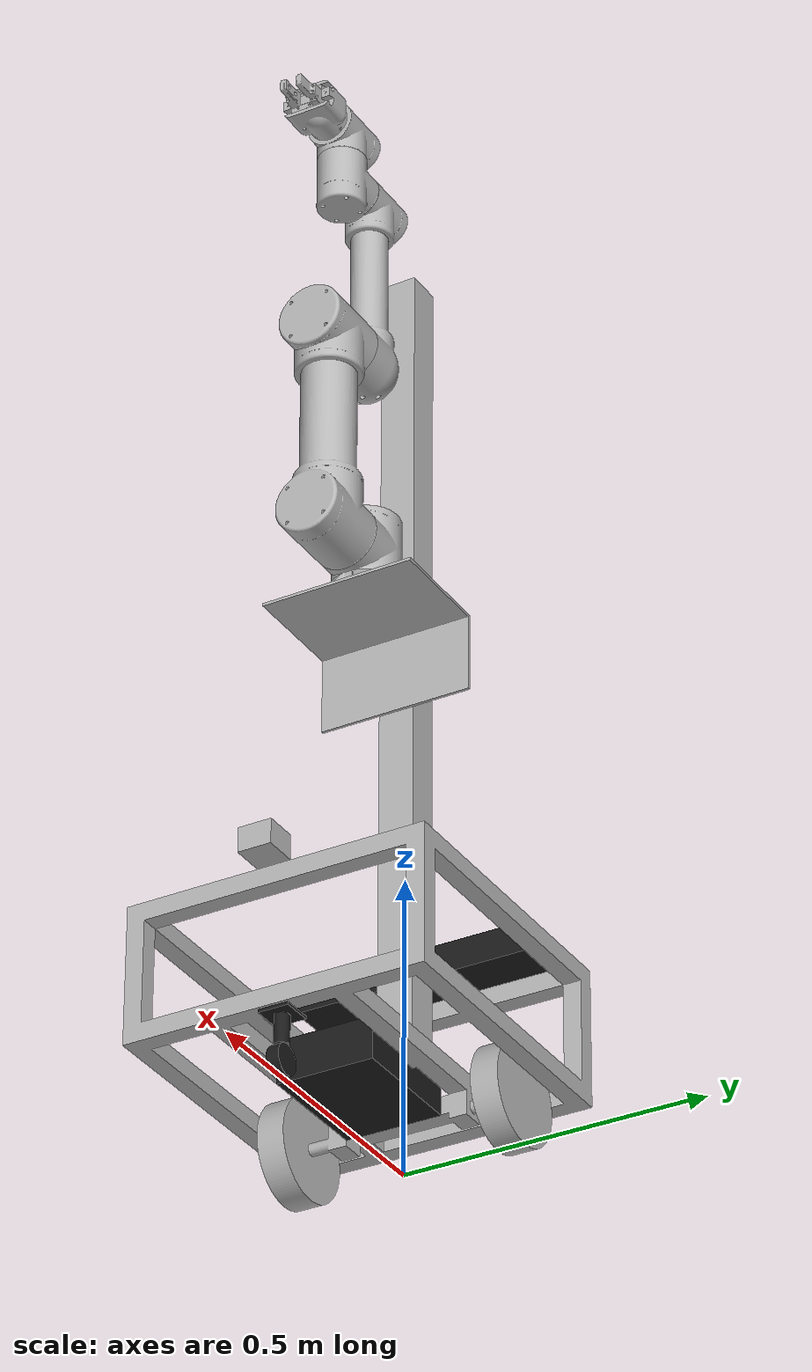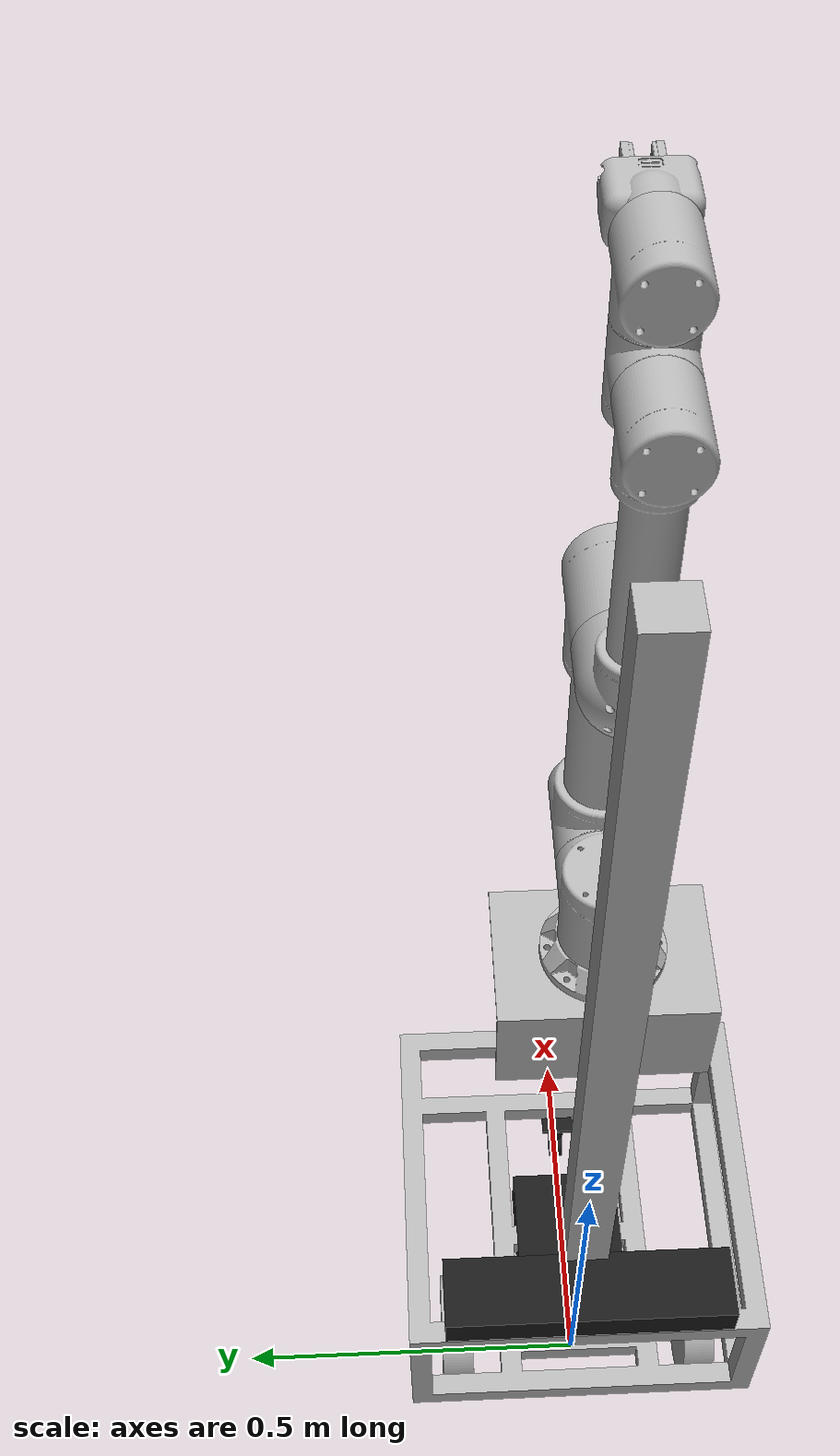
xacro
<?xml version="1.0" ?>
<robot name="andesrobot" xmlns:xacro="http://www.ros.org/wiki/xacro">

<!-- Colores (materials) y propiedades físicas para Gazebo (fricción de ruedas). -->
<xacro:include filename="$(find andesrobot_description)/urdf/andesrobot.materials.xacro" />
<xacro:include filename="$(find andesrobot_description)/urdf/andesrobot.gazebo.xacro" />

<!-- lock_arm:=true -> brazo, lift y dedos quedan FIXED (simular/mapear sin que el brazo se desplome).
     Para RViz con sliders: lock_arm:=false (default). -->
<xacro:arg name="lock_arm" default="false"/>
<!-- Convertir el texto "true"/"false" del argumento en un verdadero/falso de Python. -->
<xacro:property name="lock_arm" value="${'$(arg lock_arm)' == 'true'}"/>
<!-- Tipo de articulación del brazo: fixed si lock_arm, si no continuous (gira) / prismatic (desliza). -->
<xacro:property name="arm_joint_type" value="${'fixed' if lock_arm else 'continuous'}"/>
<xacro:property name="prismatic_joint_type" value="${'fixed' if lock_arm else 'prismatic'}"/>

<xacro:arg name="simple_collision" default="false"/>
<xacro:property name="simple_collision" value="${'$(arg simple_collision)' == 'true'}"/>
<!-- Interruptores de sensores simulados (para depurar). Los usa andesrobot.sim.xacro. -->
<xacro:arg name="sim_lidar" default="true"/>
<xacro:arg name="sim_imu" default="true"/>
<link name="base_footprint"/>

<joint name="base_footprint_joint" type="fixed">
  <!-- base_link = centro del eje de las ruedas motrices (centro de rotación del diff drive), a la altura del radio de rueda -->
  <origin xyz="0 0 0.08255" rpy="0 0 0"/>
  <parent link="base_footprint"/>
  <child link="base_link"/>
</joint>

<!-- base_link: el CHASIS (bastidor de aluminio). Su origen está en el centro del eje de ruedas.
     Explico cada parte una vez aquí; los demás links tienen la misma estructura. -->
<link name="base_link">
  <!-- Física: centro de masa (origin), masa en kg e inercia (resistencia a girar) en kg·m². -->
  <inertial>
    <origin xyz="0.12174 0 0.110956" rpy="0 0 0"/>
    <mass value="10.7"/>
    <inertia ixx="0.441167" iyy="0.459156" izz="0.712445" ixy="-0" iyz="1.93312e-06" ixz="-0.00782913"/>
  </inertial>
  <!-- Cómo se ve: la malla del CAD, corrida a su lugar (origin) y escalada de mm a m. -->
  <visual>
    <origin xyz="0.13 0 0.520248" rpy="0 0 3.141592653589793"/>
    <geometry>
      <mesh filename="file://$(find andesrobot_description)/meshes/base_link.stl" scale="0.001 0.001 0.001"/>
    </geometry>
    <!-- Color definido en andesrobot.materials.xacro. -->
    <material name="silver"/>
  </visual>
  <!-- Colisión con la malla CAD completa: solo si simple_collision es falso. -->
  <xacro:unless value="${simple_collision}">
  <collision>
    <origin xyz="0.13 0 0.520248" rpy="0 0 3.141592653589793"/>
    <geometry>
      <mesh filename="file://$(find andesrobot_description)/meshes/base_link.stl" scale="0.001 0.001 0.001"/>
    </geometry>
  </collision>
  </xacro:unless>
  <!-- Colisiones simplificadas (medidas de las mallas, en frame base_link) -->
  <!-- En simulación (simple_collision:=true) todo el robot choca como estas 5 formas simples,
       pegadas al chasis (el brazo va fijo). Es mucho más estable para Gazebo que las mallas. -->
  <xacro:if value="${simple_collision}">
    <collision name="chasis">
      <origin xyz="0.13 0 0.115" rpy="0 0 0"/>
      <geometry><box size="0.50 0.50 0.27"/></geometry>
    </collision>
    <collision name="columna">
      <origin xyz="0 0 0.77" rpy="0 0 0"/>
      <geometry><box size="0.06 0.06 1.50"/></geometry>
    </collision>
    <collision name="rplidar_c1">
      <origin xyz="0.408 0 0.271" rpy="0 0 0"/>
      <geometry><cylinder radius="0.028" length="0.042"/></geometry>
    </collision>
    <collision name="carro_lift">
      <origin xyz="0.1225 0 0.789" rpy="0 0 0"/>
      <geometry><box size="0.185 0.26 0.172"/></geometry>
    </collision>
    <collision name="brazo">
      <origin xyz="0.221 0 1.3045" rpy="0 0 0"/>
      <geometry><box size="0.308 0.11 0.859"/></geometry>
    </collision>
  </xacro:if>
</link>

<!-- Brazo, eslabón 1: base giratoria del brazo (gira en Z sobre arm_base_link_1). -->
<link name="link_1_1">
  <inertial>
    <origin xyz="-0.01769557352244753 -9.412818198760994e-06 0.06365159642189822" rpy="0 0 0"/>
    <mass value="1.31"/>
    <inertia ixx="0.00326332" iyy="0.00351412" izz="0.00353527" ixy="-0" iyz="0" ixz="-0.000181296"/>
  </inertial>
  <visual>
    <origin xyz="-0.0075 -0.0 -0.3545" rpy="0 0 0"/>
    <geometry>
      <mesh filename="file://$(find andesrobot_description)/meshes/link_1_1.stl" scale="0.001 0.001 0.001"/>
    </geometry>
    <material name="silver"/>
  </visual>
  <xacro:unless value="${simple_collision}">
  <collision>
    <origin xyz="-0.0075 -0.0 -0.3545" rpy="0 0 0"/>
    <geometry>
      <mesh filename="file://$(find andesrobot_description)/meshes/link_1_1.stl" scale="0.001 0.001 0.001"/>
    </geometry>
  </collision>
  </xacro:unless>
</link>

<!-- Brazo, eslabón 2: hombro. -->
<link name="link_2_1">
  <inertial>
    <origin xyz="-0.06117091356976916 3.782915765605535e-05 0.1745118338257844" rpy="0 0 0"/>
    <mass value="1.74"/>
    <inertia ixx="0.034584" iyy="0.0345762" izz="0.0039522" ixy="-1.30049e-06" iyz="1.17044e-05" ixz="5.20197e-05"/>
  </inertial>
  <visual>
    <origin xyz="0.0575 -0.0 -0.4105" rpy="0 0 0"/>
    <geometry>
      <mesh filename="file://$(find andesrobot_description)/meshes/link_2_1.stl" scale="0.001 0.001 0.001"/>
    </geometry>
    <material name="silver"/>
  </visual>
  <xacro:unless value="${simple_collision}">
  <collision>
    <origin xyz="0.0575 -0.0 -0.4105" rpy="0 0 0"/>
    <geometry>
      <mesh filename="file://$(find andesrobot_description)/meshes/link_2_1.stl" scale="0.001 0.001 0.001"/>
    </geometry>
  </collision>
  </xacro:unless>
</link>

<!-- Brazo, eslabón 3: codo. -->
<link name="link_3_1">
  <inertial>
    <origin xyz="0.060349833319215604 -7.17139814212156e-06 0.14917664928098273" rpy="0 0 0"/>
    <mass value="0.94"/>
    <inertia ixx="0.0174787" iyy="0.0177275" izz="0.00157008" ixy="0" iyz="1.24412e-06" ixz="-0.00166712"/>
  </inertial>
  <visual>
    <origin xyz="0.058577 -0.0 -0.760577" rpy="0 0 0"/>
    <geometry>
      <mesh filename="file://$(find andesrobot_description)/meshes/link_3_1.stl" scale="0.001 0.001 0.001"/>
    </geometry>
    <material name="silver"/>
  </visual>
  <xacro:unless value="${simple_collision}">
  <collision>
    <origin xyz="0.058577 -0.0 -0.760577" rpy="0 0 0"/>
    <geometry>
      <mesh filename="file://$(find andesrobot_description)/meshes/link_3_1.stl" scale="0.001 0.001 0.001"/>
    </geometry>
  </collision>
  </xacro:unless>
</link>

<!-- Brazo, eslabón 4: muñeca (inclinación). -->
<link name="link_4_1">
  <inertial>
    <origin xyz="-0.03758399899740222 -2.5185582457390994e-05 -0.009574293539618806" rpy="0 0 0"/>
    <mass value="0.51"/>
    <inertia ixx="0.000712094" iyy="0.000785364" izz="0.000723543" ixy="-0" iyz="-0" ixz="-5.9532e-05"/>
  </inertial>
  <visual>
    <origin xyz="0.032577 -0.0 -1.084077" rpy="0 0 0"/>
    <geometry>
      <mesh filename="file://$(find andesrobot_description)/meshes/link_4_1.stl" scale="0.001 0.001 0.001"/>
    </geometry>
    <material name="silver"/>
  </visual>
  <xacro:unless value="${simple_collision}">
  <collision>
    <origin xyz="0.032577 -0.0 -1.084077" rpy="0 0 0"/>
    <geometry>
      <mesh filename="file://$(find andesrobot_description)/meshes/link_4_1.stl" scale="0.001 0.001 0.001"/>
    </geometry>
  </collision>
  </xacro:unless>
</link>

<!-- Brazo, eslabón 5: muñeca (giro). -->
<link name="link_5_1">
  <inertial>
    <origin xyz="0.009039834811220046 -2.5441028107860334e-05 0.03771079682664524" rpy="0 0 0"/>
    <mass value="0.51"/>
    <inertia ixx="0.000722621" iyy="0.000795109" izz="0.000722621" ixy="0" iyz="0" ixz="-5.43664e-05"/>
  </inertial>
  <visual>
    <origin xyz="0.082077 -0.0 -1.124077" rpy="0 0 0"/>
    <geometry>
      <mesh filename="file://$(find andesrobot_description)/meshes/link_5_1.stl" scale="0.001 0.001 0.001"/>
    </geometry>
    <material name="silver"/>
  </visual>
  <xacro:unless value="${simple_collision}">
  <collision>
    <origin xyz="0.082077 -0.0 -1.124077" rpy="0 0 0"/>
    <geometry>
      <mesh filename="file://$(find andesrobot_description)/meshes/link_5_1.stl" scale="0.001 0.001 0.001"/>
    </geometry>
  </collision>
  </xacro:unless>
</link>

<!-- Brazo, eslabón 6: muñeca final, donde va la pinza. -->
<link name="link_6_1">
  <inertial>
    <origin xyz="-0.04672721914174861 0.0010341455962512703 -4.467579352440687e-05" rpy="0 0 0"/>
    <mass value="0.13"/>
    <inertia ixx="0.000127214" iyy="8.6745e-05" izz="0.000133197" ixy="8.79767e-07" iyz="-1.75953e-07" ixz="-1.75953e-07"/>
  </inertial>
  <visual>
    <origin xyz="0.123077 -0.0 -1.173577" rpy="0 0 0"/>
    <geometry>
      <mesh filename="file://$(find andesrobot_description)/meshes/link_6_1.stl" scale="0.001 0.001 0.001"/>
    </geometry>
    <material name="silver"/>
  </visual>
  <xacro:unless value="${simple_collision}">
  <collision>
    <origin xyz="0.123077 -0.0 -1.173577" rpy="0 0 0"/>
    <geometry>
      <mesh filename="file://$(find andesrobot_description)/meshes/link_6_1.stl" scale="0.001 0.001 0.001"/>
    </geometry>
  </collision>
  </xacro:unless>
</link>

<!-- Pinza: dedo derecho. -->
<link name="right_finger_link_1">
  <inertial>
    <origin xyz="-0.0246083952902236 0.013356716518430598 -0.007375101628988023" rpy="0 0 0"/>
    <mass value="0.015"/>
    <inertia ixx="3.80841e-06" iyy="5.98464e-06" izz="7.52614e-06" ixy="1.45082e-06" iyz="8.16088e-07" ixz="-1.45082e-06"/>
  </inertial>
  <visual>
    <origin xyz="0.180677 0.0038 -1.187077" rpy="0 0 0"/>
    <geometry>
      <mesh filename="file://$(find andesrobot_description)/meshes/right_finger_link_1.stl" scale="0.001 0.001 0.001"/>
    </geometry>
    <material name="silver"/>
  </visual>
  <xacro:unless value="${simple_collision}">
  <collision>
    <origin xyz="0.180677 0.0038 -1.187077" rpy="0 0 0"/>
    <geometry>
      <mesh filename="file://$(find andesrobot_description)/meshes/right_finger_link_1.stl" scale="0.001 0.001 0.001"/>
    </geometry>
  </collision>
  </xacro:unless>
</link>

<!-- Pinza: dedo izquierdo. -->
<link name="left_finger_link_1">
  <inertial>
    <origin xyz="-0.024608395290223434 -0.013356716294173003 0.007375804549700549" rpy="0 0 0"/>
    <mass value="0.015"/>
    <inertia ixx="3.80841e-06" iyy="5.98464e-06" izz="7.52614e-06" ixy="-1.45082e-06" iyz="8.16088e-07" ixz="1.45082e-06"/>
  </inertial>
  <visual>
    <origin xyz="0.180677 -0.0038 -1.160077" rpy="0 0 0"/>
    <geometry>
      <mesh filename="file://$(find andesrobot_description)/meshes/left_finger_link_1.stl" scale="0.001 0.001 0.001"/>
    </geometry>
    <material name="silver"/>
  </visual>
  <xacro:unless value="${simple_collision}">
  <collision>
    <origin xyz="0.180677 -0.0038 -1.160077" rpy="0 0 0"/>
    <geometry>
      <mesh filename="file://$(find andesrobot_description)/meshes/left_finger_link_1.stl" scale="0.001 0.001 0.001"/>
    </geometry>
  </collision>
  </xacro:unless>
</link>

<!-- Carro del elevador: sube y baja por la columna llevando el brazo. -->
<link name="lift_carriage_link_1">
  <inertial>
    <origin xyz="-0.055357142857138136 -1.5546917979023206e-16 0.03714285714285398" rpy="0 0 0"/>
    <mass value="0.4"/>
    <inertia ixx="0.00292764" iyy="0.00213053" izz="0.00370908" ixy="-0" iyz="-0" ixz="0.000588845"/>
  </inertial>
  <visual>
    <origin xyz="-0.1 -0.0 -0.25" rpy="0 0 0"/>
    <geometry>
      <mesh filename="file://$(find andesrobot_description)/meshes/lift_carriage_link_1.stl" scale="0.001 0.001 0.001"/>
    </geometry>
    <material name="silver"/>
  </visual>
  <xacro:unless value="${simple_collision}">
  <collision>
    <origin xyz="-0.1 -0.0 -0.25" rpy="0 0 0"/>
    <geometry>
      <mesh filename="file://$(find andesrobot_description)/meshes/lift_carriage_link_1.stl" scale="0.001 0.001 0.001"/>
    </geometry>
  </collision>
  </xacro:unless>
</link>

<!-- Rueda motriz izquierda (rueda de hoverboard 6.5", radio 0.08255 m). -->
<link name="left_wheel_link_1">
  <inertial>
    <origin xyz="-2.7755575615628914e-17 -0.02249983226177152 8.78772389301119e-08" rpy="0 0 0"/>
    <mass value="3.0"/>
    <inertia ixx="0.00561703" iyy="0.0102205" izz="0.00561703" ixy="-0" iyz="0" ixz="0"/>
  </inertial>
  <visual>
    <origin xyz="-0.13 0.15775 0.520496" rpy="0 0 0"/>
    <geometry>
      <mesh filename="file://$(find andesrobot_description)/meshes/left_wheel_link_1.stl" scale="0.001 0.001 0.001"/>
    </geometry>
    <material name="silver"/>
  </visual>
  <collision>
    <!-- cilindro ideal: r=0.08255, ancho 0.045 (medido de la malla) -->
    <!-- rpy 1.5708 (90°) en x acuesta el cilindro para que su eje quede a lo ancho, como una rueda. -->
    <origin xyz="0 -0.0225 0" rpy="1.5707963267948966 0 0"/>
    <geometry>
      <cylinder radius="0.08255" length="0.045"/>
    </geometry>
  </collision>
</link>

<!-- Rueda motriz derecha. -->
<link name="right_wheel_link_1">
  <inertial>
    <origin xyz="-2.7755575615628914e-17 0.02249983226177152 0.0" rpy="0 0 0"/>
    <mass value="3.0"/>
    <inertia ixx="0.00561703" iyy="0.0102205" izz="0.00561703" ixy="0" iyz="-0" ixz="0"/>
  </inertial>
  <visual>
    <origin xyz="-0.13 -0.15775 0.52" rpy="0 0 0"/>
    <geometry>
      <mesh filename="file://$(find andesrobot_description)/meshes/right_wheel_link_1.stl" scale="0.001 0.001 0.001"/>
    </geometry>
    <material name="silver"/>
  </visual>
  <collision>
    <!-- cilindro ideal: r=0.08255, ancho 0.045 (medido de la malla) -->
    <origin xyz="0 0.0225 0" rpy="1.5707963267948966 0 0"/>
    <geometry>
      <cylinder radius="0.08255" length="0.045"/>
    </geometry>
  </collision>
</link>

<!-- IMU (acelerómetro + giroscopio). -->
<link name="imu_link_1">
  <inertial>
    <origin xyz="0.0 0.0 -0.007499999999999951" rpy="0 0 0"/>
    <mass value="0.0183804"/>
    <inertia ixx="2e-06" iyy="2e-06" izz="4e-06" ixy="0.0" iyz="0.0" ixz="0.0"/>
  </inertial>
  <visual>
    <origin xyz="-0.0 -0.0 0.5" rpy="0 0 0"/>
    <geometry>
      <mesh filename="file://$(find andesrobot_description)/meshes/imu_link_1.stl" scale="0.001 0.001 0.001"/>
    </geometry>
    <material name="silver"/>
  </visual>
  <xacro:unless value="${simple_collision}">
  <collision>
    <origin xyz="-0.0 -0.0 0.5" rpy="0 0 0"/>
    <geometry>
      <mesh filename="file://$(find andesrobot_description)/meshes/imu_link_1.stl" scale="0.001 0.001 0.001"/>
    </geometry>
  </collision>
  </xacro:unless>
</link>

<!-- Rueda loca delantera. En el CAD venía como un "palo"; se modela como caster giratorio.
     caster_height = montaje -> suelo (del CAD). caster_wheel_radius: MEDIR la rueda real y ajustar. -->
<xacro:property name="caster_height" value="0.103"/>
<xacro:property name="caster_wheel_radius" value="0.025"/>
<xacro:property name="caster_wheel_width" value="0.020"/>
<link name="front_caster_link_1">
  <inertial>
    <origin xyz="0.0 0.0 -0.0515" rpy="0 0 0"/>
    <mass value="0.1"/>
    <inertia ixx="9.45905e-05" iyy="9.45905e-05" izz="1.16618e-05" ixy="0" iyz="0" ixz="0"/>
  </inertial>
  <!-- placa de montaje -->
  <visual>
    <origin xyz="0 0 -0.0025" rpy="0 0 0"/>
    <geometry><box size="0.05 0.05 0.005"/></geometry>
    <material name="caster_black"/>
  </visual>
  <!-- cuerpo / horquilla -->
  <visual>
    <origin xyz="0 0 ${-(caster_height - 2*caster_wheel_radius)/2 - 0.0025}" rpy="0 0 0"/>
    <geometry><cylinder radius="0.012" length="${caster_height - 2*caster_wheel_radius - 0.005}"/></geometry>
    <material name="caster_black"/>
  </visual>
  <!-- rueda -->
  <visual>
    <origin xyz="0 0 ${-(caster_height - caster_wheel_radius)}" rpy="${pi/2} 0 0"/>
    <geometry><cylinder radius="${caster_wheel_radius}" length="${caster_wheel_width}"/></geometry>
    <material name="caster_black"/>
  </visual>
  <!-- colisión: esfera sin fricción (aprox. estándar de rueda loca en Gazebo) -->
  <collision>
    <origin xyz="0 0 ${-(caster_height - caster_wheel_radius)}" rpy="0 0 0"/>
    <geometry><sphere radius="${caster_wheel_radius}"/></geometry>
  </collision>
</link>

<!-- Carcasa del RPLIDAR C1. El frame exacto de medición es "laser" (más abajo). -->
<link name="lidar_link_1">
  <inertial>
    <origin xyz="-0.058000000000000024 -1.9721522630525296e-33 0.02065000000000003" rpy="0 0 0"/>
    <mass value="0.11"/>
    <inertia ixx="4.38916e-05" iyy="4.38916e-05" izz="5.68965e-05" ixy="0" iyz="-0" ixz="0"/>
  </inertial>
  <visual>
    <origin xyz="0.22 -0.0 0.27" rpy="0 0 0"/>
    <geometry>
      <mesh filename="file://$(find andesrobot_description)/meshes/lidar_link_1.stl" scale="0.001 0.001 0.001"/>
    </geometry>
    <material name="silver"/>
  </visual>
  <xacro:unless value="${simple_collision}">
  <collision>
    <origin xyz="0.22 -0.0 0.27" rpy="0 0 0"/>
    <geometry>
      <mesh filename="file://$(find andesrobot_description)/meshes/lidar_link_1.stl" scale="0.001 0.001 0.001"/>
    </geometry>
  </collision>
  </xacro:unless>
</link>

<!-- Columna vertical (perfil de 1.5 m) por donde sube el carro del elevador. -->
<link name="vertical_column_link_1">
  <inertial>
    <origin xyz="-0.03 0.0 0.75" rpy="0 0 0"/>
    <mass value="4.6"/>
    <inertia ixx="0.86388" iyy="0.86388" izz="0.00275968" ixy="0" iyz="0" ixz="-0"/>
  </inertial>
  <visual>
    <origin xyz="-0.16 -0.0 0.5" rpy="0 0 0"/>
    <geometry>
      <mesh filename="file://$(find andesrobot_description)/meshes/vertical_column_link_1.stl" scale="0.001 0.001 0.001"/>
    </geometry>
    <material name="silver"/>
  </visual>
  <xacro:unless value="${simple_collision}">
  <collision>
    <origin xyz="-0.16 -0.0 0.5" rpy="0 0 0"/>
    <geometry>
      <mesh filename="file://$(find andesrobot_description)/meshes/vertical_column_link_1.stl" scale="0.001 0.001 0.001"/>
    </geometry>
  </collision>
  </xacro:unless>
</link>

<!-- Base del brazo, atornillada al carro del elevador. -->
<link name="arm_base_link_1">
  <inertial>
    <origin xyz="4.338687172847182e-05 -0.00010909262325140833 0.017247921655867693" rpy="0 0 0"/>
    <mass value="0.97"/>
    <inertia ixx="0.00152928" iyy="0.00153442" izz="0.00285038" ixy="-2.57022e-06" iyz="2.57022e-06" ixz="-0"/>
  </inertial>
  <visual>
    <origin xyz="-0.0075 -0.0 -0.3175" rpy="0 0 0"/>
    <geometry>
      <mesh filename="file://$(find andesrobot_description)/meshes/arm_base_link_1.stl" scale="0.001 0.001 0.001"/>
    </geometry>
    <material name="silver"/>
  </visual>
  <xacro:unless value="${simple_collision}">
  <collision>
    <origin xyz="-0.0075 -0.0 -0.3175" rpy="0 0 0"/>
    <geometry>
      <mesh filename="file://$(find andesrobot_description)/meshes/arm_base_link_1.stl" scale="0.001 0.001 0.001"/>
    </geometry>
  </collision>
  </xacro:unless>
</link>

<!-- Brazo 1: gira la base del brazo alrededor de Z (vertical). -->
<joint name="joint_1" type="${arm_joint_type}">
  <!-- Dónde queda el hijo respecto al padre (aquí 3.7 cm más arriba). -->
  <origin xyz="0.0 0.0 0.037" rpy="0 0 0"/>
  <parent link="arm_base_link_1"/>
  <child link="link_1_1"/>
  <!-- Eje de giro (0 0 1 = Z). -->
  <axis xyz="0.0 0.0 1.0"/>
  <!-- Amortiguación y roce de la articulación (solo para la simulación). -->
  <dynamics damping="0.08" friction="0.02"/>
</joint>

<!-- Brazo 2 (hombro): gira alrededor de X. -->
<joint name="joint_2" type="${arm_joint_type}">
  <origin xyz="-0.065 0.0 0.056" rpy="0 0 0"/>
  <parent link="link_1_1"/>
  <child link="link_2_1"/>
  <axis xyz="-1.0 0.0 0.0"/>
  <dynamics damping="0.12" friction="0.03"/>
</joint>

<!-- Brazo 3 (codo): gira alrededor de X. -->
<joint name="joint_3" type="${arm_joint_type}">
  <origin xyz="-0.001077 0.0 0.350077" rpy="0 0 0"/>
  <parent link="link_2_1"/>
  <child link="link_3_1"/>
  <axis xyz="1.0 0.0 0.0"/>
  <dynamics damping="0.12" friction="0.03"/>
</joint>

<!-- Brazo 4 (muñeca): gira alrededor de X. -->
<joint name="joint_4" type="${arm_joint_type}">
  <origin xyz="0.026 0.0 0.3235" rpy="0 0 0"/>
  <parent link="link_3_1"/>
  <child link="link_4_1"/>
  <axis xyz="-1.0 0.0 0.0"/>
  <dynamics damping="0.06" friction="0.02"/>
</joint>

<!-- Brazo 5 (muñeca): gira alrededor de Z. -->
<joint name="joint_5" type="${arm_joint_type}">
  <origin xyz="-0.0495 0.0 0.04" rpy="0 0 0"/>
  <parent link="link_4_1"/>
  <child link="link_5_1"/>
  <axis xyz="0.0 0.0 1.0"/>
  <dynamics damping="0.05" friction="0.02"/>
</joint>

<!-- Brazo 6 (muñeca): gira alrededor de X. -->
<joint name="joint_6" type="${arm_joint_type}">
  <origin xyz="-0.041 0.0 0.0495" rpy="0 0 0"/>
  <parent link="link_5_1"/>
  <child link="link_6_1"/>
  <axis xyz="-1.0 0.0 0.0"/>
  <dynamics damping="0.05" friction="0.02"/>
</joint>

<!-- Dedo derecho: se desliza en Y entre -7 mm y +16 mm. -->
<joint name="right_finger_joint" type="${prismatic_joint_type}">
  <origin xyz="-0.0576 -0.0038 0.0135" rpy="0 0 0"/>
  <parent link="link_6_1"/>
  <child link="right_finger_link_1"/>
  <axis xyz="0.0 1.0 0.0"/>
  <limit upper="0.016" lower="-0.007" effort="30" velocity="0.05"/>
</joint>

<!-- Dedo izquierdo: se desliza en Y; "mimic" lo hace copiar al derecho con signo opuesto (la pinza cierra simétrica). -->
<joint name="left_finger_joint" type="${prismatic_joint_type}">
  <origin xyz="-0.0576 0.0038 -0.0135" rpy="0 0 0"/>
  <parent link="link_6_1"/>
  <child link="left_finger_link_1"/>
  <axis xyz="0.0 1.0 0.0"/>
  <xacro:unless value="${lock_arm}"><mimic joint="right_finger_joint" multiplier="-1.0" offset="0.0"/></xacro:unless>
  <limit upper="0.007" lower="-0.016" effort="30" velocity="0.05"/>
</joint>

<!-- Elevador: el carro sube/baja en Z por la columna, de -0.4 m a +0.6 m. -->
<joint name="vertical_lift_joint" type="${prismatic_joint_type}">
  <origin xyz="-0.06 0.0 0.75" rpy="0 0 0"/>
  <parent link="vertical_column_link_1"/>
  <child link="lift_carriage_link_1"/>
  <axis xyz="0.0 0.0 1.0"/>
  <dynamics damping="5.0" friction="2.0"/>
  <!-- Límites: recorrido en m (lower/upper), fuerza máx. en N (effort), velocidad máx. en m/s. -->
  <limit upper="0.6" lower="-0.4" effort="150" velocity="0.20"/>
</joint>

<!-- Rueda izquierda: gira sin límite. Este nombre lo usan el diff drive simulado y ros2_control. -->
<joint name="left_wheel_joint" type="continuous">
  <origin xyz="0 0.15775 0" rpy="0 0 3.141592653589793"/>
  <parent link="base_link"/>
  <child link="left_wheel_link_1"/>
  <axis xyz="0.0 -1.0 0.0"/>
  <dynamics damping="0.02" friction="0.0"/>
</joint>
<!-- Las dos ruedas: joint con rpy yaw 180° y eje -Y. Girado 180°, el eje -Y queda como +Y:
     velocidad positiva = rueda avanza hacia +X (adelante). -->

<!-- Rueda derecha. -->
<joint name="right_wheel_joint" type="continuous">
  <origin xyz="0 -0.15775 0" rpy="0 0 3.141592653589793"/>
  <parent link="base_link"/>
  <child link="right_wheel_link_1"/>
  <axis xyz="0.0 -1.0 0.0"/>
  <dynamics damping="0.02" friction="0.0"/>
</joint>

<!-- IMU pegada al chasis. -->
<joint name="imu_joint" type="fixed">
  <origin xyz="0.13 0 0.020248" rpy="0 0 3.141592653589793"/>
  <parent link="base_link"/>
  <child link="imu_link_1"/>
</joint>

<!-- Rueda loca pegada al chasis, 0.35 m delante del eje. -->
<joint name="front_caster_joint" type="fixed">
  <origin xyz="0.35 0 0.020248" rpy="0 0 3.141592653589793"/>
  <parent link="base_link"/>
  <child link="front_caster_link_1"/>
</joint>

<!-- Carcasa del lidar pegada al chasis, al frente. -->
<joint name="lidar_joint" type="fixed">
  <origin xyz="0.35 0 0.250248" rpy="0 0 3.141592653589793"/>
  <parent link="base_link"/>
  <child link="lidar_link_1"/>
</joint>

<!-- Columna pegada al chasis, sobre el eje de las ruedas. -->
<joint name="base_to_vertical_column_joint" type="fixed">
  <origin xyz="-0.03 0 0.020248" rpy="0 0 3.141592653589793"/>
  <parent link="base_link"/>
  <child link="vertical_column_link_1"/>
</joint>

<!-- Base del brazo pegada al carro del elevador. -->
<joint name="carriage_to_arm_joint" type="fixed">
  <origin xyz="-0.0925 0.0 0.0675" rpy="0 0 0"/>
  <parent link="lift_carriage_link_1"/>
  <child link="arm_base_link_1"/>
</joint>

<link name="laser">
  <!-- masa mínima para que Gazebo Classic no descarte el link -->
  <inertial>
    <mass value="0.001"/>
    <inertia ixx="1e-6" iyy="1e-6" izz="1e-6" ixy="0" ixz="0" iyz="0"/>
  </inertial>
</link>
<joint name="laser_joint" type="fixed">
  <origin xyz="-0.058 0.0 0.030" rpy="0 0 3.141592653589793"/>
  <parent link="lidar_link_1"/>
  <child link="laser"/>
</joint>

<!-- Macro: caja sólida con masa (para baterías y drivers, que no están en el CAD). -->
<xacro:macro name="mass_box" params="name mass sx sy sz xyz">
  <link name="${name}">
    <inertial>
      <origin xyz="0 0 0" rpy="0 0 0"/>
      <mass value="${mass}"/>
      <inertia ixx="${mass/12*(sy**2 + sz**2)}" ixy="0" ixz="0"
               iyy="${mass/12*(sx**2 + sz**2)}" iyz="0"
               izz="${mass/12*(sx**2 + sy**2)}"/>
    </inertial>
    <visual>
      <origin xyz="0 0 0" rpy="0 0 0"/>
      <geometry><box size="${sx} ${sy} ${sz}"/></geometry>
      <material name="caster_black"/>
    </visual>
  </link>
  <joint name="${name}_joint" type="fixed">
    <origin xyz="${xyz}" rpy="0 0 0"/>
    <parent link="base_link"/>
    <child link="${name}"/>
  </joint>
</xacro:macro>

<!-- 2 baterías 10S2P en lo más bajo del chasis (centro a 0.10 m del suelo). -->
<xacro:mass_box name="batteries_link" mass="2.2" sx="0.20" sy="0.16" sz="0.07" xyz="0.13 0 ${0.10 - 0.08255}"/>
<!-- 7 drivers TB6600 sobre la base, hacia atrás (centro a 0.36 m del suelo). -->
<xacro:mass_box name="drivers_link" mass="1.3" sx="0.10" sy="0.40" sz="0.05" xyz="-0.07 0 ${0.36 - 0.08255}"/>

<!-- Simulación (Gazebo): lidar, diff drive, IMU, joint states. Va al final porque usa lock_arm. -->
<xacro:include filename="$(find andesrobot_description)/urdf/andesrobot.sim.xacro" />

<!-- Milo físico: ros2_control con el hoverboard -->
<xacro:arg name="use_hardware" default="false"/>
<xacro:arg name="hoverboard_port" default="/dev/hoverboard"/>
<xacro:if value="$(arg use_hardware)">
  <xacro:include filename="$(find andesrobot_description)/urdf/andesrobot.ros2_control.xacro" />
</xacro:if>

</robot>

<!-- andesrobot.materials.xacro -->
<robot name="andesrobot" xmlns:xacro="http://www.ros.org/wiki/xacro" >

<!-- Colores para RViz: rgba = rojo, verde, azul, transparencia (0 a 1). -->
<material name="silver">
  <color rgba="0.700 0.700 0.700 1.000"/>
</material>

<material name="caster_black">
  <color rgba="0.100 0.100 0.100 1.000"/>
</material>

</robot>
